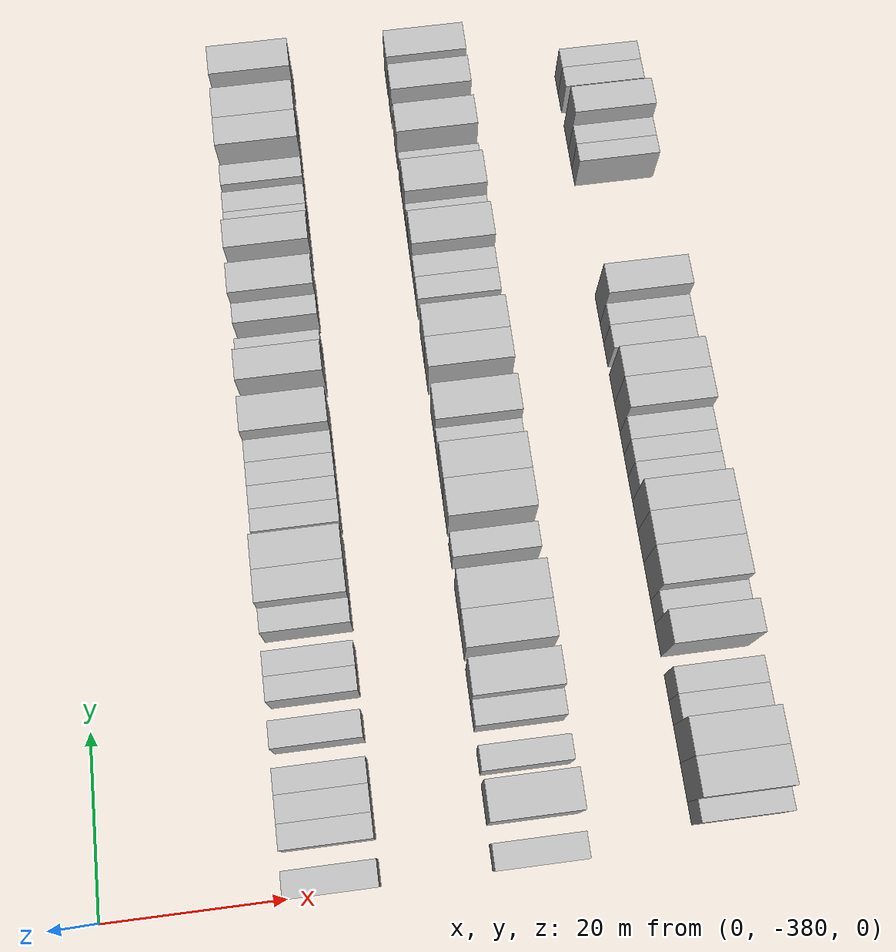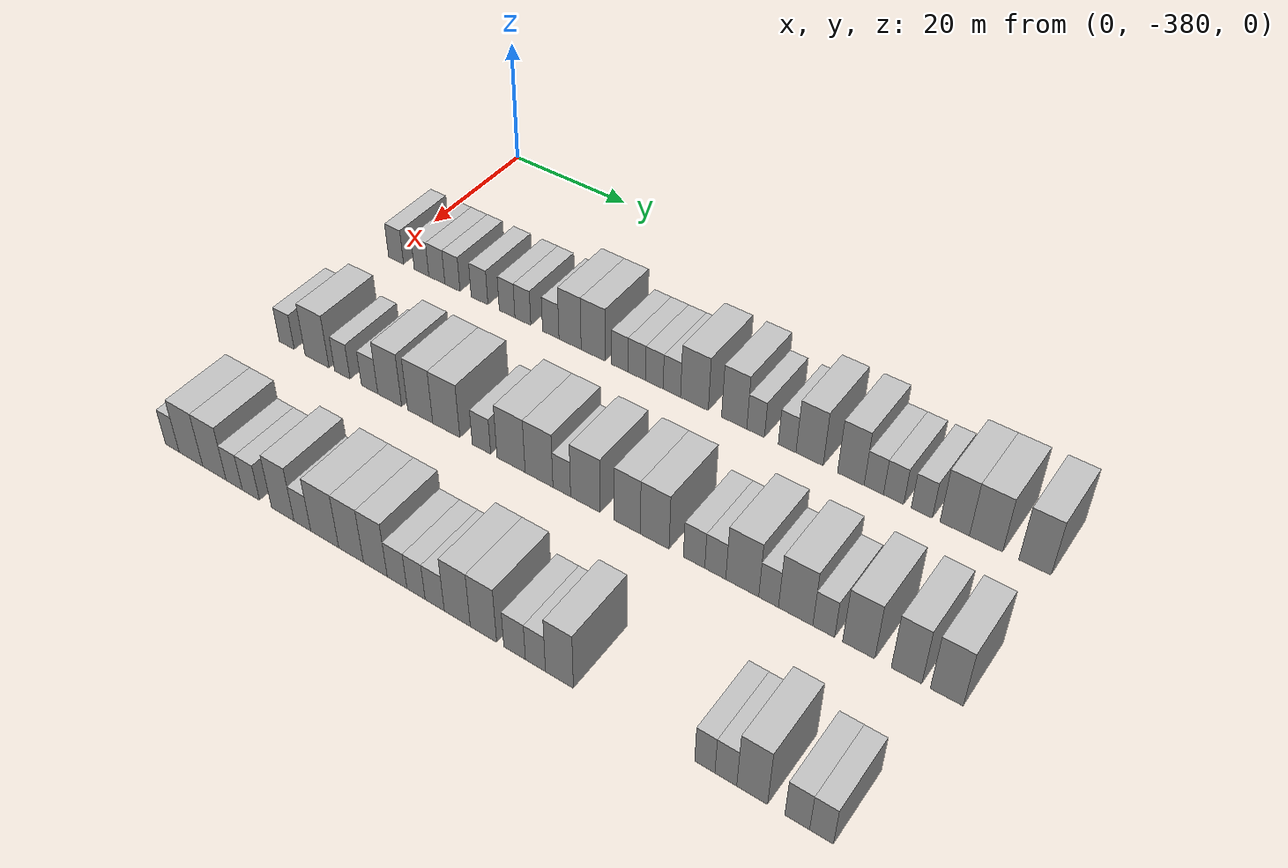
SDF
<sdf version="1.6">
 <world name="default">
  <model name="building_1">
   <static>1</static>
   <pose>25.0000 -378.5996 0 0.000000 0.000000 0.000000</pose>
   <link name="link">
    <pose>0 0 3.00 0 0 0</pose>
    <collision name="collision"><geometry><box><size>10.0000 2.8008 6.0000</size></box></geometry></collision>
    <visual name="visual">
     <cast_shadows>0</cast_shadows>
     <geometry><box><size>10.0000 2.8008 6.0000</size></box></geometry>
     <material>
      <script>
       <uri>model://HANNAS_wall/materials/scripts</uri>
       <uri>model://HANNAS_wall/materials/textures</uri>
       <name>vrc/HANNAS_wall</name>
      </script>
     </material>
    </visual>
   </link>
  </model>
  <model name="building_2">
   <static>1</static>
   <pose>25.0000 -373.8620 0 0.000000 0.000000 0.000000</pose>
   <link name="link">
    <pose>0 0 3.00 0 0 0</pose>
    <collision name="collision"><geometry><box><size>10.0000 2.6746 6.0000</size></box></geometry></collision>
    <visual name="visual">
     <cast_shadows>0</cast_shadows>
     <geometry><box><size>10.0000 2.6746 6.0000</size></box></geometry>
     <material>
      <script>
       <uri>model://HANNAS_wall/materials/scripts</uri>
       <uri>model://HANNAS_wall/materials/textures</uri>
       <name>vrc/HANNAS_wall</name>
      </script>
     </material>
    </visual>
   </link>
  </model>
  <model name="building_3">
   <static>1</static>
   <pose>25.0000 -371.0558 0 0.000000 0.000000 0.000000</pose>
   <link name="link">
    <pose>0 0 3.00 0 0 0</pose>
    <collision name="collision"><geometry><box><size>10.0000 2.9377 6.0000</size></box></geometry></collision>
    <visual name="visual">
     <cast_shadows>0</cast_shadows>
     <geometry><box><size>10.0000 2.9377 6.0000</size></box></geometry>
     <material>
      <script>
       <uri>model://HANNAS_wall/materials/scripts</uri>
       <uri>model://HANNAS_wall/materials/textures</uri>
       <name>vrc/HANNAS_wall</name>
      </script>
     </material>
    </visual>
   </link>
  </model>
  <model name="building_4">
   <static>1</static>
   <pose>25.0000 -368.2185 0 0.000000 0.000000 0.000000</pose>
   <link name="link">
    <pose>0 0 3.00 0 0 0</pose>
    <collision name="collision"><geometry><box><size>10.0000 2.7370 6.0000</size></box></geometry></collision>
    <visual name="visual">
     <cast_shadows>0</cast_shadows>
     <geometry><box><size>10.0000 2.7370 6.0000</size></box></geometry>
     <material>
      <script>
       <uri>model://HANNAS_wall/materials/scripts</uri>
       <uri>model://HANNAS_wall/materials/textures</uri>
       <name>vrc/HANNAS_wall</name>
      </script>
     </material>
    </visual>
   </link>
  </model>
  <model name="building_5">
   <static>1</static>
   <pose>25.0000 -363.3761 0 0.000000 0.000000 0.000000</pose>
   <link name="link">
    <pose>0 0 3.00 0 0 0</pose>
    <collision name="collision"><geometry><box><size>10.0000 2.9478 6.0000</size></box></geometry></collision>
    <visual name="visual">
     <cast_shadows>0</cast_shadows>
     <geometry><box><size>10.0000 2.9478 6.0000</size></box></geometry>
     <material>
      <script>
       <uri>model://HANNAS_wall/materials/scripts</uri>
       <uri>model://HANNAS_wall/materials/textures</uri>
       <name>vrc/HANNAS_wall</name>
      </script>
     </material>
    </visual>
   </link>
  </model>
  <model name="building_6">
   <static>1</static>
   <pose>25.0000 -358.5464 0 0.000000 0.000000 0.000000</pose>
   <link name="link">
    <pose>0 0 3.00 0 0 0</pose>
    <collision name="collision"><geometry><box><size>10.0000 2.7116 6.0000</size></box></geometry></collision>
    <visual name="visual">
     <cast_shadows>0</cast_shadows>
     <geometry><box><size>10.0000 2.7116 6.0000</size></box></geometry>
     <material>
      <script>
       <uri>model://HANNAS_wall/materials/scripts</uri>
       <uri>model://HANNAS_wall/materials/textures</uri>
       <name>vrc/HANNAS_wall</name>
      </script>
     </material>
    </visual>
   </link>
  </model>
  <model name="building_7">
   <static>1</static>
   <pose>25.0000 -355.8268 0 0.000000 0.000000 0.000000</pose>
   <link name="link">
    <pose>0 0 3.00 0 0 0</pose>
    <collision name="collision"><geometry><box><size>10.0000 2.7277 6.0000</size></box></geometry></collision>
    <visual name="visual">
     <cast_shadows>0</cast_shadows>
     <geometry><box><size>10.0000 2.7277 6.0000</size></box></geometry>
     <material>
      <script>
       <uri>model://HANNAS_wall/materials/scripts</uri>
       <uri>model://HANNAS_wall/materials/textures</uri>
       <name>vrc/HANNAS_wall</name>
      </script>
     </material>
    </visual>
   </link>
  </model>
  <model name="building_8">
   <static>1</static>
   <pose>25.0000 -351.0859 0 0.000000 0.000000 0.000000</pose>
   <link name="link">
    <pose>0 0 3.00 0 0 0</pose>
    <collision name="collision"><geometry><box><size>10.0000 2.7541 6.0000</size></box></geometry></collision>
    <visual name="visual">
     <cast_shadows>0</cast_shadows>
     <geometry><box><size>10.0000 2.7541 6.0000</size></box></geometry>
     <material>
      <script>
       <uri>model://HANNAS_wall/materials/scripts</uri>
       <uri>model://HANNAS_wall/materials/textures</uri>
       <name>vrc/HANNAS_wall</name>
      </script>
     </material>
    </visual>
   </link>
  </model>
  <model name="building_9">
   <static>1</static>
   <pose>25.0000 -347.8685 0 0.000000 0.000000 0.000000</pose>
   <link name="link">
    <pose>0 0 4.50 0 0 0</pose>
    <collision name="collision"><geometry><box><size>10.0000 3.6805 9.0000</size></box></geometry></collision>
    <visual name="visual">
     <cast_shadows>0</cast_shadows>
     <geometry><box><size>10.0000 3.6805 9.0000</size></box></geometry>
     <material>
      <script>
       <uri>model://HANNAS_wall/materials/scripts</uri>
       <uri>model://HANNAS_wall/materials/textures</uri>
       <name>vrc/HANNAS_wall</name>
      </script>
     </material>
    </visual>
   </link>
  </model>
  <model name="building_10">
   <static>1</static>
   <pose>25.0000 -344.0556 0 0.000000 0.000000 0.000000</pose>
   <link name="link">
    <pose>0 0 4.50 0 0 0</pose>
    <collision name="collision"><geometry><box><size>10.0000 3.9455 9.0000</size></box></geometry></collision>
    <visual name="visual">
     <cast_shadows>0</cast_shadows>
     <geometry><box><size>10.0000 3.9455 9.0000</size></box></geometry>
     <material>
      <script>
       <uri>model://HANNAS_wall/materials/scripts</uri>
       <uri>model://HANNAS_wall/materials/textures</uri>
       <name>vrc/HANNAS_wall</name>
      </script>
     </material>
    </visual>
   </link>
  </model>
  <model name="building_11">
   <static>1</static>
   <pose>25.0000 -339.7486 0 0.000000 0.000000 0.000000</pose>
   <link name="link">
    <pose>0 0 3.00 0 0 0</pose>
    <collision name="collision"><geometry><box><size>10.0000 2.6686 6.0000</size></box></geometry></collision>
    <visual name="visual">
     <cast_shadows>0</cast_shadows>
     <geometry><box><size>10.0000 2.6686 6.0000</size></box></geometry>
     <material>
      <script>
       <uri>model://HANNAS_wall/materials/scripts</uri>
       <uri>model://HANNAS_wall/materials/textures</uri>
       <name>vrc/HANNAS_wall</name>
      </script>
     </material>
    </visual>
   </link>
  </model>
  <model name="building_12">
   <static>1</static>
   <pose>25.0000 -337.0450 0 0.000000 0.000000 0.000000</pose>
   <link name="link">
    <pose>0 0 3.00 0 0 0</pose>
    <collision name="collision"><geometry><box><size>10.0000 2.7386 6.0000</size></box></geometry></collision>
    <visual name="visual">
     <cast_shadows>0</cast_shadows>
     <geometry><box><size>10.0000 2.7386 6.0000</size></box></geometry>
     <material>
      <script>
       <uri>model://HANNAS_wall/materials/scripts</uri>
       <uri>model://HANNAS_wall/materials/textures</uri>
       <name>vrc/HANNAS_wall</name>
      </script>
     </material>
    </visual>
   </link>
  </model>
  <model name="building_13">
   <static>1</static>
   <pose>25.0000 -334.2865 0 0.000000 0.000000 0.000000</pose>
   <link name="link">
    <pose>0 0 3.00 0 0 0</pose>
    <collision name="collision"><geometry><box><size>10.0000 2.7783 6.0000</size></box></geometry></collision>
    <visual name="visual">
     <cast_shadows>0</cast_shadows>
     <geometry><box><size>10.0000 2.7783 6.0000</size></box></geometry>
     <material>
      <script>
       <uri>model://HANNAS_wall/materials/scripts</uri>
       <uri>model://HANNAS_wall/materials/textures</uri>
       <name>vrc/HANNAS_wall</name>
      </script>
     </material>
    </visual>
   </link>
  </model>
  <model name="building_14">
   <static>1</static>
   <pose>25.0000 -331.5499 0 0.000000 0.000000 0.000000</pose>
   <link name="link">
    <pose>0 0 3.00 0 0 0</pose>
    <collision name="collision"><geometry><box><size>10.0000 2.6951 6.0000</size></box></geometry></collision>
    <visual name="visual">
     <cast_shadows>0</cast_shadows>
     <geometry><box><size>10.0000 2.6951 6.0000</size></box></geometry>
     <material>
      <script>
       <uri>model://HANNAS_wall/materials/scripts</uri>
       <uri>model://HANNAS_wall/materials/textures</uri>
       <name>vrc/HANNAS_wall</name>
      </script>
     </material>
    </visual>
   </link>
  </model>
  <model name="building_15">
   <static>1</static>
   <pose>25.0000 -328.0849 0 0.000000 0.000000 0.000000</pose>
   <link name="link">
    <pose>0 0 4.50 0 0 0</pose>
    <collision name="collision"><geometry><box><size>10.0000 4.2349 9.0000</size></box></geometry></collision>
    <visual name="visual">
     <cast_shadows>0</cast_shadows>
     <geometry><box><size>10.0000 4.2349 9.0000</size></box></geometry>
     <material>
      <script>
       <uri>model://HANNAS_wall/materials/scripts</uri>
       <uri>model://HANNAS_wall/materials/textures</uri>
       <name>vrc/HANNAS_wall</name>
      </script>
     </material>
    </visual>
   </link>
  </model>
  <model name="building_16">
   <static>1</static>
   <pose>25.0000 -322.0957 0 0.000000 0.000000 0.000000</pose>
   <link name="link">
    <pose>0 0 4.50 0 0 0</pose>
    <collision name="collision"><geometry><box><size>10.0000 3.7436 9.0000</size></box></geometry></collision>
    <visual name="visual">
     <cast_shadows>0</cast_shadows>
     <geometry><box><size>10.0000 3.7436 9.0000</size></box></geometry>
     <material>
      <script>
       <uri>model://HANNAS_wall/materials/scripts</uri>
       <uri>model://HANNAS_wall/materials/textures</uri>
       <name>vrc/HANNAS_wall</name>
      </script>
     </material>
    </visual>
   </link>
  </model>
  <model name="building_17">
   <static>1</static>
   <pose>25.0000 -318.9262 0 0.000000 0.000000 0.000000</pose>
   <link name="link">
    <pose>0 0 3.00 0 0 0</pose>
    <collision name="collision"><geometry><box><size>10.0000 2.5953 6.0000</size></box></geometry></collision>
    <visual name="visual">
     <cast_shadows>0</cast_shadows>
     <geometry><box><size>10.0000 2.5953 6.0000</size></box></geometry>
     <material>
      <script>
       <uri>model://HANNAS_wall/materials/scripts</uri>
       <uri>model://HANNAS_wall/materials/textures</uri>
       <name>vrc/HANNAS_wall</name>
      </script>
     </material>
    </visual>
   </link>
  </model>
  <model name="building_18">
   <static>1</static>
   <pose>25.0000 -314.3590 0 0.000000 0.000000 0.000000</pose>
   <link name="link">
    <pose>0 0 3.00 0 0 0</pose>
    <collision name="collision"><geometry><box><size>10.0000 2.5390 6.0000</size></box></geometry></collision>
    <visual name="visual">
     <cast_shadows>0</cast_shadows>
     <geometry><box><size>10.0000 2.5390 6.0000</size></box></geometry>
     <material>
      <script>
       <uri>model://HANNAS_wall/materials/scripts</uri>
       <uri>model://HANNAS_wall/materials/textures</uri>
       <name>vrc/HANNAS_wall</name>
      </script>
     </material>
    </visual>
   </link>
  </model>
  <model name="building_19">
   <static>1</static>
   <pose>25.0000 -311.1639 0 0.000000 0.000000 0.000000</pose>
   <link name="link">
    <pose>0 0 4.50 0 0 0</pose>
    <collision name="collision"><geometry><box><size>10.0000 3.8511 9.0000</size></box></geometry></collision>
    <visual name="visual">
     <cast_shadows>0</cast_shadows>
     <geometry><box><size>10.0000 3.8511 9.0000</size></box></geometry>
     <material>
      <script>
       <uri>model://HANNAS_wall/materials/scripts</uri>
       <uri>model://HANNAS_wall/materials/textures</uri>
       <name>vrc/HANNAS_wall</name>
      </script>
     </material>
    </visual>
   </link>
  </model>
  <model name="building_20">
   <static>1</static>
   <pose>25.0000 -305.4070 0 0.000000 0.000000 0.000000</pose>
   <link name="link">
    <pose>0 0 4.50 0 0 0</pose>
    <collision name="collision"><geometry><box><size>10.0000 3.6628 9.0000</size></box></geometry></collision>
    <visual name="visual">
     <cast_shadows>0</cast_shadows>
     <geometry><box><size>10.0000 3.6628 9.0000</size></box></geometry>
     <material>
      <script>
       <uri>model://HANNAS_wall/materials/scripts</uri>
       <uri>model://HANNAS_wall/materials/textures</uri>
       <name>vrc/HANNAS_wall</name>
      </script>
     </material>
    </visual>
   </link>
  </model>
  <model name="building_21">
   <static>1</static>
   <pose>25.0000 -302.2598 0 0.000000 0.000000 0.000000</pose>
   <link name="link">
    <pose>0 0 3.00 0 0 0</pose>
    <collision name="collision"><geometry><box><size>10.0000 2.6316 6.0000</size></box></geometry></collision>
    <visual name="visual">
     <cast_shadows>0</cast_shadows>
     <geometry><box><size>10.0000 2.6316 6.0000</size></box></geometry>
     <material>
      <script>
       <uri>model://HANNAS_wall/materials/scripts</uri>
       <uri>model://HANNAS_wall/materials/textures</uri>
       <name>vrc/HANNAS_wall</name>
      </script>
     </material>
    </visual>
   </link>
  </model>
  <model name="building_22">
   <static>1</static>
   <pose>25.0000 -299.5827 0 0.000000 0.000000 0.000000</pose>
   <link name="link">
    <pose>0 0 3.00 0 0 0</pose>
    <collision name="collision"><geometry><box><size>10.0000 2.7226 6.0000</size></box></geometry></collision>
    <visual name="visual">
     <cast_shadows>0</cast_shadows>
     <geometry><box><size>10.0000 2.7226 6.0000</size></box></geometry>
     <material>
      <script>
       <uri>model://HANNAS_wall/materials/scripts</uri>
       <uri>model://HANNAS_wall/materials/textures</uri>
       <name>vrc/HANNAS_wall</name>
      </script>
     </material>
    </visual>
   </link>
  </model>
  <model name="building_23">
   <static>1</static>
   <pose>25.0000 -295.8306 0 0.000000 0.000000 0.000000</pose>
   <link name="link">
    <pose>0 0 3.00 0 0 0</pose>
    <collision name="collision"><geometry><box><size>10.0000 2.7815 6.0000</size></box></geometry></collision>
    <visual name="visual">
     <cast_shadows>0</cast_shadows>
     <geometry><box><size>10.0000 2.7815 6.0000</size></box></geometry>
     <material>
      <script>
       <uri>model://HANNAS_wall/materials/scripts</uri>
       <uri>model://HANNAS_wall/materials/textures</uri>
       <name>vrc/HANNAS_wall</name>
      </script>
     </material>
    </visual>
   </link>
  </model>
  <model name="building_24">
   <static>1</static>
   <pose>25.0000 -291.5370 0 0.000000 0.000000 0.000000</pose>
   <link name="link">
    <pose>0 0 4.50 0 0 0</pose>
    <collision name="collision"><geometry><box><size>10.0000 3.8057 9.0000</size></box></geometry></collision>
    <visual name="visual">
     <cast_shadows>0</cast_shadows>
     <geometry><box><size>10.0000 3.8057 9.0000</size></box></geometry>
     <material>
      <script>
       <uri>model://HANNAS_wall/materials/scripts</uri>
       <uri>model://HANNAS_wall/materials/textures</uri>
       <name>vrc/HANNAS_wall</name>
      </script>
     </material>
    </visual>
   </link>
  </model>
  <model name="building_25">
   <static>1</static>
   <pose>25.0000 -287.5263 0 0.000000 0.000000 0.000000</pose>
   <link name="link">
    <pose>0 0 4.50 0 0 0</pose>
    <collision name="collision"><geometry><box><size>10.0000 4.2157 9.0000</size></box></geometry></collision>
    <visual name="visual">
     <cast_shadows>0</cast_shadows>
     <geometry><box><size>10.0000 4.2157 9.0000</size></box></geometry>
     <material>
      <script>
       <uri>model://HANNAS_wall/materials/scripts</uri>
       <uri>model://HANNAS_wall/materials/textures</uri>
       <name>vrc/HANNAS_wall</name>
      </script>
     </material>
    </visual>
   </link>
  </model>
  <model name="building_26">
   <static>1</static>
   <pose>25.0000 -281.4180 0 0.000000 0.000000 0.000000</pose>
   <link name="link">
    <pose>0 0 4.50 0 0 0</pose>
    <collision name="collision"><geometry><box><size>10.0000 4.0009 9.0000</size></box></geometry></collision>
    <visual name="visual">
     <cast_shadows>0</cast_shadows>
     <geometry><box><size>10.0000 4.0009 9.0000</size></box></geometry>
     <material>
      <script>
       <uri>model://HANNAS_wall/materials/scripts</uri>
       <uri>model://HANNAS_wall/materials/textures</uri>
       <name>vrc/HANNAS_wall</name>
      </script>
     </material>
    </visual>
   </link>
  </model>
  <model name="building_192">
   <static>1</static>
   <pose>47.0000 -378.6262 0 0.000000 0.000000 0.000000</pose>
   <link name="link">
    <pose>0 0 3.00 0 0 0</pose>
    <collision name="collision"><geometry><box><size>10.0000 2.7476 6.0000</size></box></geometry></collision>
    <visual name="visual">
     <cast_shadows>0</cast_shadows>
     <geometry><box><size>10.0000 2.7476 6.0000</size></box></geometry>
     <material>
      <script>
       <uri>model://HANNAS_wall/materials/scripts</uri>
       <uri>model://HANNAS_wall/materials/textures</uri>
       <name>vrc/HANNAS_wall</name>
      </script>
     </material>
    </visual>
   </link>
  </model>
  <model name="building_193">
   <static>1</static>
   <pose>47.0000 -373.1035 0 0.000000 0.000000 0.000000</pose>
   <link name="link">
    <pose>0 0 4.50 0 0 0</pose>
    <collision name="collision"><geometry><box><size>10.0000 4.2979 9.0000</size></box></geometry></collision>
    <visual name="visual">
     <cast_shadows>0</cast_shadows>
     <geometry><box><size>10.0000 4.2979 9.0000</size></box></geometry>
     <material>
      <script>
       <uri>model://HANNAS_wall/materials/scripts</uri>
       <uri>model://HANNAS_wall/materials/textures</uri>
       <name>vrc/HANNAS_wall</name>
      </script>
     </material>
    </visual>
   </link>
  </model>
  <model name="building_194">
   <static>1</static>
   <pose>47.0000 -368.6024 0 0.000000 0.000000 0.000000</pose>
   <link name="link">
    <pose>0 0 3.00 0 0 0</pose>
    <collision name="collision"><geometry><box><size>10.0000 2.7041 6.0000</size></box></geometry></collision>
    <visual name="visual">
     <cast_shadows>0</cast_shadows>
     <geometry><box><size>10.0000 2.7041 6.0000</size></box></geometry>
     <material>
      <script>
       <uri>model://HANNAS_wall/materials/scripts</uri>
       <uri>model://HANNAS_wall/materials/textures</uri>
       <name>vrc/HANNAS_wall</name>
      </script>
     </material>
    </visual>
   </link>
  </model>
  <model name="building_195">
   <static>1</static>
   <pose>47.0000 -363.8375 0 0.000000 0.000000 0.000000</pose>
   <link name="link">
    <pose>0 0 3.00 0 0 0</pose>
    <collision name="collision"><geometry><box><size>10.0000 2.8258 6.0000</size></box></geometry></collision>
    <visual name="visual">
     <cast_shadows>0</cast_shadows>
     <geometry><box><size>10.0000 2.8258 6.0000</size></box></geometry>
     <material>
      <script>
       <uri>model://HANNAS_wall/materials/scripts</uri>
       <uri>model://HANNAS_wall/materials/textures</uri>
       <name>vrc/HANNAS_wall</name>
      </script>
     </material>
    </visual>
   </link>
  </model>
  <model name="building_196">
   <static>1</static>
   <pose>47.0000 -360.3899 0 0.000000 0.000000 0.000000</pose>
   <link name="link">
    <pose>0 0 4.50 0 0 0</pose>
    <collision name="collision"><geometry><box><size>10.0000 4.0696 9.0000</size></box></geometry></collision>
    <visual name="visual">
     <cast_shadows>0</cast_shadows>
     <geometry><box><size>10.0000 4.0696 9.0000</size></box></geometry>
     <material>
      <script>
       <uri>model://HANNAS_wall/materials/scripts</uri>
       <uri>model://HANNAS_wall/materials/textures</uri>
       <name>vrc/HANNAS_wall</name>
      </script>
     </material>
    </visual>
   </link>
  </model>
  <model name="building_197">
   <static>1</static>
   <pose>47.0000 -355.2705 0 0.000000 0.000000 0.000000</pose>
   <link name="link">
    <pose>0 0 4.50 0 0 0</pose>
    <collision name="collision"><geometry><box><size>10.0000 4.1691 9.0000</size></box></geometry></collision>
    <visual name="visual">
     <cast_shadows>0</cast_shadows>
     <geometry><box><size>10.0000 4.1691 9.0000</size></box></geometry>
     <material>
      <script>
       <uri>model://HANNAS_wall/materials/scripts</uri>
       <uri>model://HANNAS_wall/materials/textures</uri>
       <name>vrc/HANNAS_wall</name>
      </script>
     </material>
    </visual>
   </link>
  </model>
  <model name="building_198">
   <static>1</static>
   <pose>47.0000 -350.9713 0 0.000000 0.000000 0.000000</pose>
   <link name="link">
    <pose>0 0 4.50 0 0 0</pose>
    <collision name="collision"><geometry><box><size>10.0000 4.4293 9.0000</size></box></geometry></collision>
    <visual name="visual">
     <cast_shadows>0</cast_shadows>
     <geometry><box><size>10.0000 4.4293 9.0000</size></box></geometry>
     <material>
      <script>
       <uri>model://HANNAS_wall/materials/scripts</uri>
       <uri>model://HANNAS_wall/materials/textures</uri>
       <name>vrc/HANNAS_wall</name>
      </script>
     </material>
    </visual>
   </link>
  </model>
  <model name="building_199">
   <static>1</static>
   <pose>47.0000 -345.2939 0 0.000000 0.000000 0.000000</pose>
   <link name="link">
    <pose>0 0 3.00 0 0 0</pose>
    <collision name="collision"><geometry><box><size>10.0000 2.9257 6.0000</size></box></geometry></collision>
    <visual name="visual">
     <cast_shadows>0</cast_shadows>
     <geometry><box><size>10.0000 2.9257 6.0000</size></box></geometry>
     <material>
      <script>
       <uri>model://HANNAS_wall/materials/scripts</uri>
       <uri>model://HANNAS_wall/materials/textures</uri>
       <name>vrc/HANNAS_wall</name>
      </script>
     </material>
    </visual>
   </link>
  </model>
  <model name="building_200">
   <static>1</static>
   <pose>47.0000 -340.6391 0 0.000000 0.000000 0.000000</pose>
   <link name="link">
    <pose>0 0 4.50 0 0 0</pose>
    <collision name="collision"><geometry><box><size>10.0000 4.3837 9.0000</size></box></geometry></collision>
    <visual name="visual">
     <cast_shadows>0</cast_shadows>
     <geometry><box><size>10.0000 4.3837 9.0000</size></box></geometry>
     <material>
      <script>
       <uri>model://HANNAS_wall/materials/scripts</uri>
       <uri>model://HANNAS_wall/materials/textures</uri>
       <name>vrc/HANNAS_wall</name>
      </script>
     </material>
    </visual>
   </link>
  </model>
  <model name="building_201">
   <static>1</static>
   <pose>47.0000 -336.3230 0 0.000000 0.000000 0.000000</pose>
   <link name="link">
    <pose>0 0 4.50 0 0 0</pose>
    <collision name="collision"><geometry><box><size>10.0000 4.2486 9.0000</size></box></geometry></collision>
    <visual name="visual">
     <cast_shadows>0</cast_shadows>
     <geometry><box><size>10.0000 4.2486 9.0000</size></box></geometry>
     <material>
      <script>
       <uri>model://HANNAS_wall/materials/scripts</uri>
       <uri>model://HANNAS_wall/materials/textures</uri>
       <name>vrc/HANNAS_wall</name>
      </script>
     </material>
    </visual>
   </link>
  </model>
  <model name="building_202">
   <static>1</static>
   <pose>47.0000 -332.8718 0 0.000000 0.000000 0.000000</pose>
   <link name="link">
    <pose>0 0 3.00 0 0 0</pose>
    <collision name="collision"><geometry><box><size>10.0000 2.6539 6.0000</size></box></geometry></collision>
    <visual name="visual">
     <cast_shadows>0</cast_shadows>
     <geometry><box><size>10.0000 2.6539 6.0000</size></box></geometry>
     <material>
      <script>
       <uri>model://HANNAS_wall/materials/scripts</uri>
       <uri>model://HANNAS_wall/materials/textures</uri>
       <name>vrc/HANNAS_wall</name>
      </script>
     </material>
    </visual>
   </link>
  </model>
  <model name="building_203">
   <static>1</static>
   <pose>47.0000 -329.3547 0 0.000000 0.000000 0.000000</pose>
   <link name="link">
    <pose>0 0 4.50 0 0 0</pose>
    <collision name="collision"><geometry><box><size>10.0000 4.3801 9.0000</size></box></geometry></collision>
    <visual name="visual">
     <cast_shadows>0</cast_shadows>
     <geometry><box><size>10.0000 4.3801 9.0000</size></box></geometry>
     <material>
      <script>
       <uri>model://HANNAS_wall/materials/scripts</uri>
       <uri>model://HANNAS_wall/materials/textures</uri>
       <name>vrc/HANNAS_wall</name>
      </script>
     </material>
    </visual>
   </link>
  </model>
  <model name="building_204">
   <static>1</static>
   <pose>47.0000 -323.2825 0 0.000000 0.000000 0.000000</pose>
   <link name="link">
    <pose>0 0 4.50 0 0 0</pose>
    <collision name="collision"><geometry><box><size>10.0000 3.7643 9.0000</size></box></geometry></collision>
    <visual name="visual">
     <cast_shadows>0</cast_shadows>
     <geometry><box><size>10.0000 3.7643 9.0000</size></box></geometry>
     <material>
      <script>
       <uri>model://HANNAS_wall/materials/scripts</uri>
       <uri>model://HANNAS_wall/materials/textures</uri>
       <name>vrc/HANNAS_wall</name>
      </script>
     </material>
    </visual>
   </link>
  </model>
  <model name="building_205">
   <static>1</static>
   <pose>47.0000 -319.3608 0 0.000000 0.000000 0.000000</pose>
   <link name="link">
    <pose>0 0 4.50 0 0 0</pose>
    <collision name="collision"><geometry><box><size>10.0000 4.0790 9.0000</size></box></geometry></collision>
    <visual name="visual">
     <cast_shadows>0</cast_shadows>
     <geometry><box><size>10.0000 4.0790 9.0000</size></box></geometry>
     <material>
      <script>
       <uri>model://HANNAS_wall/materials/scripts</uri>
       <uri>model://HANNAS_wall/materials/textures</uri>
       <name>vrc/HANNAS_wall</name>
      </script>
     </material>
    </visual>
   </link>
  </model>
  <model name="building_206">
   <static>1</static>
   <pose>47.0000 -313.8545 0 0.000000 0.000000 0.000000</pose>
   <link name="link">
    <pose>0 0 3.00 0 0 0</pose>
    <collision name="collision"><geometry><box><size>10.0000 2.9337 6.0000</size></box></geometry></collision>
    <visual name="visual">
     <cast_shadows>0</cast_shadows>
     <geometry><box><size>10.0000 2.9337 6.0000</size></box></geometry>
     <material>
      <script>
       <uri>model://HANNAS_wall/materials/scripts</uri>
       <uri>model://HANNAS_wall/materials/textures</uri>
       <name>vrc/HANNAS_wall</name>
      </script>
     </material>
    </visual>
   </link>
  </model>
  <model name="building_207">
   <static>1</static>
   <pose>47.0000 -310.9656 0 0.000000 0.000000 0.000000</pose>
   <link name="link">
    <pose>0 0 3.00 0 0 0</pose>
    <collision name="collision"><geometry><box><size>10.0000 2.8441 6.0000</size></box></geometry></collision>
    <visual name="visual">
     <cast_shadows>0</cast_shadows>
     <geometry><box><size>10.0000 2.8441 6.0000</size></box></geometry>
     <material>
      <script>
       <uri>model://HANNAS_wall/materials/scripts</uri>
       <uri>model://HANNAS_wall/materials/textures</uri>
       <name>vrc/HANNAS_wall</name>
      </script>
     </material>
    </visual>
   </link>
  </model>
  <model name="building_208">
   <static>1</static>
   <pose>47.0000 -307.3490 0 0.000000 0.000000 0.000000</pose>
   <link name="link">
    <pose>0 0 4.50 0 0 0</pose>
    <collision name="collision"><geometry><box><size>10.0000 4.3891 9.0000</size></box></geometry></collision>
    <visual name="visual">
     <cast_shadows>0</cast_shadows>
     <geometry><box><size>10.0000 4.3891 9.0000</size></box></geometry>
     <material>
      <script>
       <uri>model://HANNAS_wall/materials/scripts</uri>
       <uri>model://HANNAS_wall/materials/textures</uri>
       <name>vrc/HANNAS_wall</name>
      </script>
     </material>
    </visual>
   </link>
  </model>
  <model name="building_209">
   <static>1</static>
   <pose>47.0000 -303.8637 0 0.000000 0.000000 0.000000</pose>
   <link name="link">
    <pose>0 0 3.00 0 0 0</pose>
    <collision name="collision"><geometry><box><size>10.0000 2.5816 6.0000</size></box></geometry></collision>
    <visual name="visual">
     <cast_shadows>0</cast_shadows>
     <geometry><box><size>10.0000 2.5816 6.0000</size></box></geometry>
     <material>
      <script>
       <uri>model://HANNAS_wall/materials/scripts</uri>
       <uri>model://HANNAS_wall/materials/textures</uri>
       <name>vrc/HANNAS_wall</name>
      </script>
     </material>
    </visual>
   </link>
  </model>
  <model name="building_210">
   <static>1</static>
   <pose>47.0000 -300.3670 0 0.000000 0.000000 0.000000</pose>
   <link name="link">
    <pose>0 0 4.50 0 0 0</pose>
    <collision name="collision"><geometry><box><size>10.0000 4.4118 9.0000</size></box></geometry></collision>
    <visual name="visual">
     <cast_shadows>0</cast_shadows>
     <geometry><box><size>10.0000 4.4118 9.0000</size></box></geometry>
     <material>
      <script>
       <uri>model://HANNAS_wall/materials/scripts</uri>
       <uri>model://HANNAS_wall/materials/textures</uri>
       <name>vrc/HANNAS_wall</name>
      </script>
     </material>
    </visual>
   </link>
  </model>
  <model name="building_211">
   <static>1</static>
   <pose>47.0000 -296.7793 0 0.000000 0.000000 0.000000</pose>
   <link name="link">
    <pose>0 0 3.00 0 0 0</pose>
    <collision name="collision"><geometry><box><size>10.0000 2.7637 6.0000</size></box></geometry></collision>
    <visual name="visual">
     <cast_shadows>0</cast_shadows>
     <geometry><box><size>10.0000 2.7637 6.0000</size></box></geometry>
     <material>
      <script>
       <uri>model://HANNAS_wall/materials/scripts</uri>
       <uri>model://HANNAS_wall/materials/textures</uri>
       <name>vrc/HANNAS_wall</name>
      </script>
     </material>
    </visual>
   </link>
  </model>
  <model name="building_212">
   <static>1</static>
   <pose>47.0000 -292.4073 0 0.000000 0.000000 0.000000</pose>
   <link name="link">
    <pose>0 0 4.50 0 0 0</pose>
    <collision name="collision"><geometry><box><size>10.0000 3.9802 9.0000</size></box></geometry></collision>
    <visual name="visual">
     <cast_shadows>0</cast_shadows>
     <geometry><box><size>10.0000 3.9802 9.0000</size></box></geometry>
     <material>
      <script>
       <uri>model://HANNAS_wall/materials/scripts</uri>
       <uri>model://HANNAS_wall/materials/textures</uri>
       <name>vrc/HANNAS_wall</name>
      </script>
     </material>
    </visual>
   </link>
  </model>
  <model name="building_213">
   <static>1</static>
   <pose>47.0000 -286.5849 0 0.000000 0.000000 0.000000</pose>
   <link name="link">
    <pose>0 0 4.50 0 0 0</pose>
    <collision name="collision"><geometry><box><size>10.0000 3.6647 9.0000</size></box></geometry></collision>
    <visual name="visual">
     <cast_shadows>0</cast_shadows>
     <geometry><box><size>10.0000 3.6647 9.0000</size></box></geometry>
     <material>
      <script>
       <uri>model://HANNAS_wall/materials/scripts</uri>
       <uri>model://HANNAS_wall/materials/textures</uri>
       <name>vrc/HANNAS_wall</name>
      </script>
     </material>
    </visual>
   </link>
  </model>
  <model name="building_214">
   <static>1</static>
   <pose>47.0000 -281.8180 0 0.000000 0.000000 0.000000</pose>
   <link name="link">
    <pose>0 0 4.50 0 0 0</pose>
    <collision name="collision"><geometry><box><size>10.0000 3.8690 9.0000</size></box></geometry></collision>
    <visual name="visual">
     <cast_shadows>0</cast_shadows>
     <geometry><box><size>10.0000 3.8690 9.0000</size></box></geometry>
     <material>
      <script>
       <uri>model://HANNAS_wall/materials/scripts</uri>
       <uri>model://HANNAS_wall/materials/textures</uri>
       <name>vrc/HANNAS_wall</name>
      </script>
     </material>
    </visual>
   </link>
  </model>
  <model name="building_386">
   <static>1</static>
   <pose>69.0000 -376.7921 0 0.000000 0.000000 0.000000</pose>
   <link name="link">
    <pose>0 0 3.00 0 0 0</pose>
    <collision name="collision"><geometry><box><size>10.0000 2.4158 6.0000</size></box></geometry></collision>
    <visual name="visual">
     <cast_shadows>0</cast_shadows>
     <geometry><box><size>10.0000 2.4158 6.0000</size></box></geometry>
     <material>
      <script>
       <uri>model://HANNAS_wall/materials/scripts</uri>
       <uri>model://HANNAS_wall/materials/textures</uri>
       <name>vrc/HANNAS_wall</name>
      </script>
     </material>
    </visual>
   </link>
  </model>
  <model name="building_387">
   <static>1</static>
   <pose>69.0000 -373.4972 0 0.000000 0.000000 0.000000</pose>
   <link name="link">
    <pose>0 0 4.50 0 0 0</pose>
    <collision name="collision"><geometry><box><size>10.0000 4.1740 9.0000</size></box></geometry></collision>
    <visual name="visual">
     <cast_shadows>0</cast_shadows>
     <geometry><box><size>10.0000 4.1740 9.0000</size></box></geometry>
     <material>
      <script>
       <uri>model://HANNAS_wall/materials/scripts</uri>
       <uri>model://HANNAS_wall/materials/textures</uri>
       <name>vrc/HANNAS_wall</name>
      </script>
     </material>
    </visual>
   </link>
  </model>
  <model name="building_388">
   <static>1</static>
   <pose>69.0000 -369.3820 0 0.000000 0.000000 0.000000</pose>
   <link name="link">
    <pose>0 0 4.50 0 0 0</pose>
    <collision name="collision"><geometry><box><size>10.0000 4.0564 9.0000</size></box></geometry></collision>
    <visual name="visual">
     <cast_shadows>0</cast_shadows>
     <geometry><box><size>10.0000 4.0564 9.0000</size></box></geometry>
     <material>
      <script>
       <uri>model://HANNAS_wall/materials/scripts</uri>
       <uri>model://HANNAS_wall/materials/textures</uri>
       <name>vrc/HANNAS_wall</name>
      </script>
     </material>
    </visual>
   </link>
  </model>
  <model name="building_389">
   <static>1</static>
   <pose>69.0000 -365.9831 0 0.000000 0.000000 0.000000</pose>
   <link name="link">
    <pose>0 0 3.00 0 0 0</pose>
    <collision name="collision"><geometry><box><size>10.0000 2.7415 6.0000</size></box></geometry></collision>
    <visual name="visual">
     <cast_shadows>0</cast_shadows>
     <geometry><box><size>10.0000 2.7415 6.0000</size></box></geometry>
     <material>
      <script>
       <uri>model://HANNAS_wall/materials/scripts</uri>
       <uri>model://HANNAS_wall/materials/textures</uri>
       <name>vrc/HANNAS_wall</name>
      </script>
     </material>
    </visual>
   </link>
  </model>
  <model name="building_390">
   <static>1</static>
   <pose>69.0000 -363.1603 0 0.000000 0.000000 0.000000</pose>
   <link name="link">
    <pose>0 0 3.00 0 0 0</pose>
    <collision name="collision"><geometry><box><size>10.0000 2.9041 6.0000</size></box></geometry></collision>
    <visual name="visual">
     <cast_shadows>0</cast_shadows>
     <geometry><box><size>10.0000 2.9041 6.0000</size></box></geometry>
     <material>
      <script>
       <uri>model://HANNAS_wall/materials/scripts</uri>
       <uri>model://HANNAS_wall/materials/textures</uri>
       <name>vrc/HANNAS_wall</name>
      </script>
     </material>
    </visual>
   </link>
  </model>
  <model name="building_391">
   <static>1</static>
   <pose>69.0000 -357.8629 0 0.000000 0.000000 0.000000</pose>
   <link name="link">
    <pose>0 0 4.50 0 0 0</pose>
    <collision name="collision"><geometry><box><size>10.0000 3.6908 9.0000</size></box></geometry></collision>
    <visual name="visual">
     <cast_shadows>0</cast_shadows>
     <geometry><box><size>10.0000 3.6908 9.0000</size></box></geometry>
     <material>
      <script>
       <uri>model://HANNAS_wall/materials/scripts</uri>
       <uri>model://HANNAS_wall/materials/textures</uri>
       <name>vrc/HANNAS_wall</name>
      </script>
     </material>
    </visual>
   </link>
  </model>
  <model name="building_392">
   <static>1</static>
   <pose>69.0000 -354.6600 0 0.000000 0.000000 0.000000</pose>
   <link name="link">
    <pose>0 0 3.00 0 0 0</pose>
    <collision name="collision"><geometry><box><size>10.0000 2.7150 6.0000</size></box></geometry></collision>
    <visual name="visual">
     <cast_shadows>0</cast_shadows>
     <geometry><box><size>10.0000 2.7150 6.0000</size></box></geometry>
     <material>
      <script>
       <uri>model://HANNAS_wall/materials/scripts</uri>
       <uri>model://HANNAS_wall/materials/textures</uri>
       <name>vrc/HANNAS_wall</name>
      </script>
     </material>
    </visual>
   </link>
  </model>
  <model name="building_393">
   <static>1</static>
   <pose>69.0000 -351.0813 0 0.000000 0.000000 0.000000</pose>
   <link name="link">
    <pose>0 0 4.50 0 0 0</pose>
    <collision name="collision"><geometry><box><size>10.0000 4.4424 9.0000</size></box></geometry></collision>
    <visual name="visual">
     <cast_shadows>0</cast_shadows>
     <geometry><box><size>10.0000 4.4424 9.0000</size></box></geometry>
     <material>
      <script>
       <uri>model://HANNAS_wall/materials/scripts</uri>
       <uri>model://HANNAS_wall/materials/textures</uri>
       <name>vrc/HANNAS_wall</name>
      </script>
     </material>
    </visual>
   </link>
  </model>
  <model name="building_394">
   <static>1</static>
   <pose>69.0000 -346.9319 0 0.000000 0.000000 0.000000</pose>
   <link name="link">
    <pose>0 0 4.50 0 0 0</pose>
    <collision name="collision"><geometry><box><size>10.0000 3.8563 9.0000</size></box></geometry></collision>
    <visual name="visual">
     <cast_shadows>0</cast_shadows>
     <geometry><box><size>10.0000 3.8563 9.0000</size></box></geometry>
     <material>
      <script>
       <uri>model://HANNAS_wall/materials/scripts</uri>
       <uri>model://HANNAS_wall/materials/textures</uri>
       <name>vrc/HANNAS_wall</name>
      </script>
     </material>
    </visual>
   </link>
  </model>
  <model name="building_395">
   <static>1</static>
   <pose>69.0000 -343.1850 0 0.000000 0.000000 0.000000</pose>
   <link name="link">
    <pose>0 0 4.50 0 0 0</pose>
    <collision name="collision"><geometry><box><size>10.0000 3.6374 9.0000</size></box></geometry></collision>
    <visual name="visual">
     <cast_shadows>0</cast_shadows>
     <geometry><box><size>10.0000 3.6374 9.0000</size></box></geometry>
     <material>
      <script>
       <uri>model://HANNAS_wall/materials/scripts</uri>
       <uri>model://HANNAS_wall/materials/textures</uri>
       <name>vrc/HANNAS_wall</name>
      </script>
     </material>
    </visual>
   </link>
  </model>
  <model name="building_396">
   <static>1</static>
   <pose>69.0000 -339.8814 0 0.000000 0.000000 0.000000</pose>
   <link name="link">
    <pose>0 0 3.00 0 0 0</pose>
    <collision name="collision"><geometry><box><size>10.0000 2.9699 6.0000</size></box></geometry></collision>
    <visual name="visual">
     <cast_shadows>0</cast_shadows>
     <geometry><box><size>10.0000 2.9699 6.0000</size></box></geometry>
     <material>
      <script>
       <uri>model://HANNAS_wall/materials/scripts</uri>
       <uri>model://HANNAS_wall/materials/textures</uri>
       <name>vrc/HANNAS_wall</name>
      </script>
     </material>
    </visual>
   </link>
  </model>
  <model name="building_397">
   <static>1</static>
   <pose>69.0000 -337.0491 0 0.000000 0.000000 0.000000</pose>
   <link name="link">
    <pose>0 0 3.00 0 0 0</pose>
    <collision name="collision"><geometry><box><size>10.0000 2.6948 6.0000</size></box></geometry></collision>
    <visual name="visual">
     <cast_shadows>0</cast_shadows>
     <geometry><box><size>10.0000 2.6948 6.0000</size></box></geometry>
     <material>
      <script>
       <uri>model://HANNAS_wall/materials/scripts</uri>
       <uri>model://HANNAS_wall/materials/textures</uri>
       <name>vrc/HANNAS_wall</name>
      </script>
     </material>
    </visual>
   </link>
  </model>
  <model name="building_398">
   <static>1</static>
   <pose>69.0000 -334.2969 0 0.000000 0.000000 0.000000</pose>
   <link name="link">
    <pose>0 0 3.00 0 0 0</pose>
    <collision name="collision"><geometry><box><size>10.0000 2.8096 6.0000</size></box></geometry></collision>
    <visual name="visual">
     <cast_shadows>0</cast_shadows>
     <geometry><box><size>10.0000 2.8096 6.0000</size></box></geometry>
     <material>
      <script>
       <uri>model://HANNAS_wall/materials/scripts</uri>
       <uri>model://HANNAS_wall/materials/textures</uri>
       <name>vrc/HANNAS_wall</name>
      </script>
     </material>
    </visual>
   </link>
  </model>
  <model name="building_399">
   <static>1</static>
   <pose>69.0000 -331.0158 0 0.000000 0.000000 0.000000</pose>
   <link name="link">
    <pose>0 0 4.50 0 0 0</pose>
    <collision name="collision"><geometry><box><size>10.0000 3.7527 9.0000</size></box></geometry></collision>
    <visual name="visual">
     <cast_shadows>0</cast_shadows>
     <geometry><box><size>10.0000 3.7527 9.0000</size></box></geometry>
     <material>
      <script>
       <uri>model://HANNAS_wall/materials/scripts</uri>
       <uri>model://HANNAS_wall/materials/textures</uri>
       <name>vrc/HANNAS_wall</name>
      </script>
     </material>
    </visual>
   </link>
  </model>
  <model name="building_400">
   <static>1</static>
   <pose>69.0000 -327.2763 0 0.000000 0.000000 0.000000</pose>
   <link name="link">
    <pose>0 0 4.50 0 0 0</pose>
    <collision name="collision"><geometry><box><size>10.0000 3.7262 9.0000</size></box></geometry></collision>
    <visual name="visual">
     <cast_shadows>0</cast_shadows>
     <geometry><box><size>10.0000 3.7262 9.0000</size></box></geometry>
     <material>
      <script>
       <uri>model://HANNAS_wall/materials/scripts</uri>
       <uri>model://HANNAS_wall/materials/textures</uri>
       <name>vrc/HANNAS_wall</name>
      </script>
     </material>
    </visual>
   </link>
  </model>
  <model name="building_401">
   <static>1</static>
   <pose>69.0000 -322.9200 0 0.000000 0.000000 0.000000</pose>
   <link name="link">
    <pose>0 0 3.00 0 0 0</pose>
    <collision name="collision"><geometry><box><size>10.0000 2.9864 6.0000</size></box></geometry></collision>
    <visual name="visual">
     <cast_shadows>0</cast_shadows>
     <geometry><box><size>10.0000 2.9864 6.0000</size></box></geometry>
     <material>
      <script>
       <uri>model://HANNAS_wall/materials/scripts</uri>
       <uri>model://HANNAS_wall/materials/textures</uri>
       <name>vrc/HANNAS_wall</name>
      </script>
     </material>
    </visual>
   </link>
  </model>
  <model name="building_402">
   <static>1</static>
   <pose>69.0000 -320.0597 0 0.000000 0.000000 0.000000</pose>
   <link name="link">
    <pose>0 0 3.00 0 0 0</pose>
    <collision name="collision"><geometry><box><size>10.0000 2.7341 6.0000</size></box></geometry></collision>
    <visual name="visual">
     <cast_shadows>0</cast_shadows>
     <geometry><box><size>10.0000 2.7341 6.0000</size></box></geometry>
     <material>
      <script>
       <uri>model://HANNAS_wall/materials/scripts</uri>
       <uri>model://HANNAS_wall/materials/textures</uri>
       <name>vrc/HANNAS_wall</name>
      </script>
     </material>
    </visual>
   </link>
  </model>
  <model name="building_403">
   <static>1</static>
   <pose>69.0000 -316.8214 0 0.000000 0.000000 0.000000</pose>
   <link name="link">
    <pose>0 0 4.50 0 0 0</pose>
    <collision name="collision"><geometry><box><size>10.0000 3.7426 9.0000</size></box></geometry></collision>
    <visual name="visual">
     <cast_shadows>0</cast_shadows>
     <geometry><box><size>10.0000 3.7426 9.0000</size></box></geometry>
     <material>
      <script>
       <uri>model://HANNAS_wall/materials/scripts</uri>
       <uri>model://HANNAS_wall/materials/textures</uri>
       <name>vrc/HANNAS_wall</name>
      </script>
     </material>
    </visual>
   </link>
  </model>
  <model name="building_404">
   <static>1</static>
   <pose>69.0000 -298.2747 0 0.000000 0.000000 0.000000</pose>
   <link name="link">
    <pose>0 0 3.00 0 0 0</pose>
    <collision name="collision"><geometry><box><size>10.0000 2.4502 6.0000</size></box></geometry></collision>
    <visual name="visual">
     <cast_shadows>0</cast_shadows>
     <geometry><box><size>10.0000 2.4502 6.0000</size></box></geometry>
     <material>
      <script>
       <uri>model://HANNAS_wall/materials/scripts</uri>
       <uri>model://HANNAS_wall/materials/textures</uri>
       <name>vrc/HANNAS_wall</name>
      </script>
     </material>
    </visual>
   </link>
  </model>
  <model name="building_405">
   <static>1</static>
   <pose>69.0000 -295.7434 0 0.000000 0.000000 0.000000</pose>
   <link name="link">
    <pose>0 0 3.00 0 0 0</pose>
    <collision name="collision"><geometry><box><size>10.0000 2.6124 6.0000</size></box></geometry></collision>
    <visual name="visual">
     <cast_shadows>0</cast_shadows>
     <geometry><box><size>10.0000 2.6124 6.0000</size></box></geometry>
     <material>
      <script>
       <uri>model://HANNAS_wall/materials/scripts</uri>
       <uri>model://HANNAS_wall/materials/textures</uri>
       <name>vrc/HANNAS_wall</name>
      </script>
     </material>
    </visual>
   </link>
  </model>
  <model name="building_406">
   <static>1</static>
   <pose>69.0000 -292.6223 0 0.000000 0.000000 0.000000</pose>
   <link name="link">
    <pose>0 0 4.50 0 0 0</pose>
    <collision name="collision"><geometry><box><size>10.0000 3.6297 9.0000</size></box></geometry></collision>
    <visual name="visual">
     <cast_shadows>0</cast_shadows>
     <geometry><box><size>10.0000 3.6297 9.0000</size></box></geometry>
     <material>
      <script>
       <uri>model://HANNAS_wall/materials/scripts</uri>
       <uri>model://HANNAS_wall/materials/textures</uri>
       <name>vrc/HANNAS_wall</name>
      </script>
     </material>
    </visual>
   </link>
  </model>
  <model name="building_407">
   <static>1</static>
   <pose>69.0000 -287.3898 0 0.000000 0.000000 0.000000</pose>
   <link name="link">
    <pose>0 0 3.00 0 0 0</pose>
    <collision name="collision"><geometry><box><size>10.0000 2.8354 6.0000</size></box></geometry></collision>
    <visual name="visual">
     <cast_shadows>0</cast_shadows>
     <geometry><box><size>10.0000 2.8354 6.0000</size></box></geometry>
     <material>
      <script>
       <uri>model://HANNAS_wall/materials/scripts</uri>
       <uri>model://HANNAS_wall/materials/textures</uri>
       <name>vrc/HANNAS_wall</name>
      </script>
     </material>
    </visual>
   </link>
  </model>
  <model name="building_408">
   <static>1</static>
   <pose>69.0000 -284.6281 0 0.000000 0.000000 0.000000</pose>
   <link name="link">
    <pose>0 0 3.00 0 0 0</pose>
    <collision name="collision"><geometry><box><size>10.0000 2.6880 6.0000</size></box></geometry></collision>
    <visual name="visual">
     <cast_shadows>0</cast_shadows>
     <geometry><box><size>10.0000 2.6880 6.0000</size></box></geometry>
     <material>
      <script>
       <uri>model://HANNAS_wall/materials/scripts</uri>
       <uri>model://HANNAS_wall/materials/textures</uri>
       <name>vrc/HANNAS_wall</name>
      </script>
     </material>
    </visual>
   </link>
  </model>
 </world>
</sdf>
